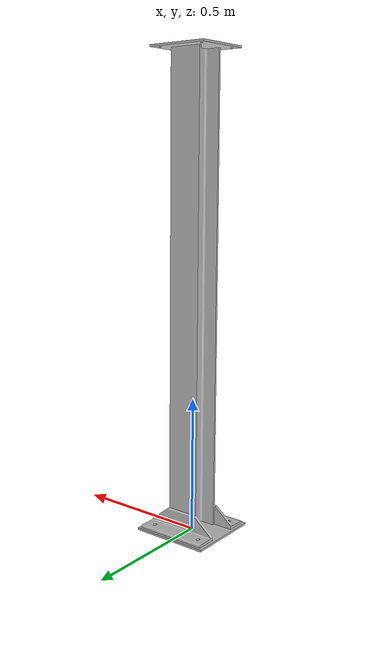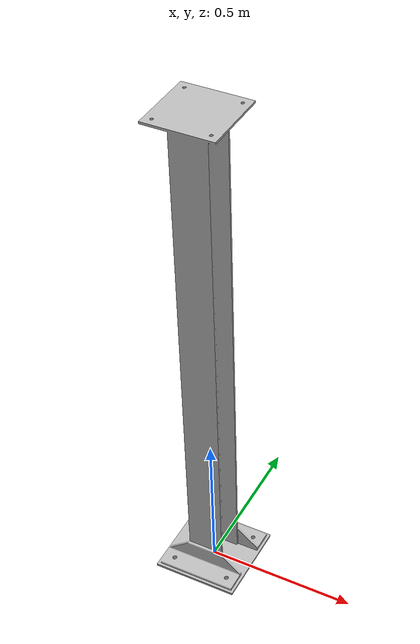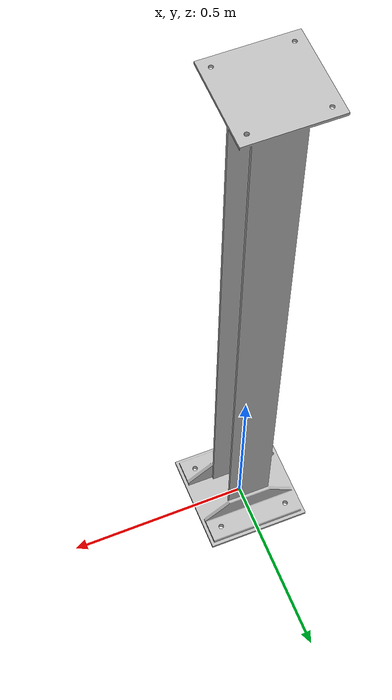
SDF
<?xml version='1.0'?>
<sdf version='1.4'>
  <model name="FGAG2002">
 <static>false</static>
 <link name="mesh_link">
	<inertial>
            <mass>100.0</mass>
 	</inertial>
        <visual name="visual">
        <geometry>
            <mesh><uri>model://FGAG2002/meshes/FGAG2002.stl</uri></mesh>
          </geometry>
        </visual>
        <collision name="collision">
          <geometry>
            <mesh><uri>model://FGAG2002/meshes/FGAG2002.stl</uri></mesh>
          </geometry>
        </collision>
      </link>

      <joint name='anchor' type='fixed'>
        <child>mesh_link</child>
        <parent>world</parent>
      </joint>
  </model>
</sdf>
